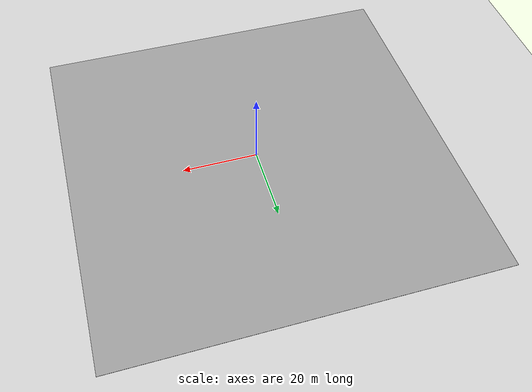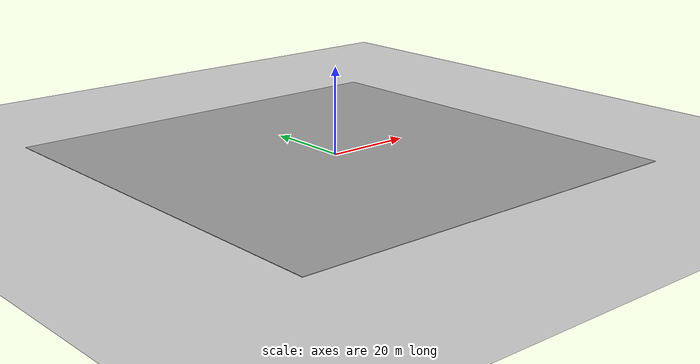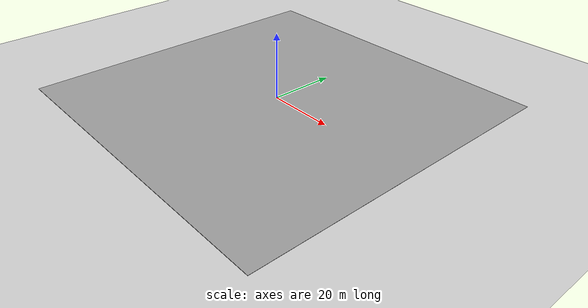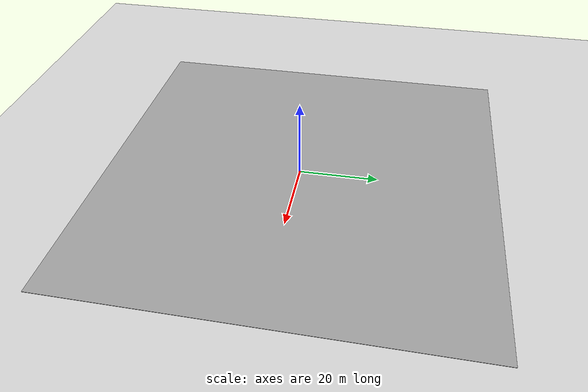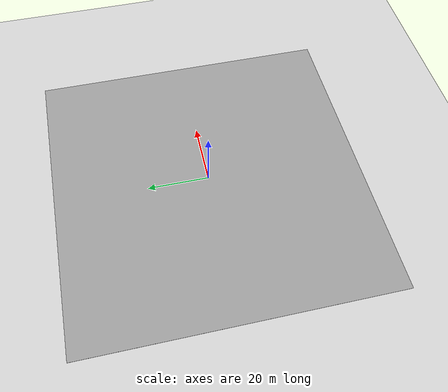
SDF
<sdf version="1.6">
 <world name="default">
  <light name="sun" type="directional">
   <pose>0 0 10 0 -0 0</pose>
   <diffuse>0.8 0.8 0.8 1</diffuse>
   <specular>0.1 0.1 0.1 1</specular>
   <attenuation>
    <range>1000</range>
    <constant>0.9</constant>
    <linear>0.01</linear>
    <quadratic>0.001</quadratic>
   </attenuation>
   <direction>-0.5 0.5 -1</direction>
  </light>
  <model name="ground_plane">
   <static>1</static>
   <link name="link">
    <collision name="collision">
     <geometry><plane><normal>0 0 1</normal><size>100 100</size></plane></geometry>
     <surface><friction><ode><mu>100</mu><mu2>50</mu2></ode></friction></surface>
    </collision>
    <visual name="visual">
     <cast_shadows>0</cast_shadows>
     <geometry><plane><normal>0 0 1</normal><size>100 100</size></plane></geometry>
     <material>
      <script><uri>file://media/materials/scripts/gazebo.material</uri><name>Gazebo/Grey</name></script>
     </material>
    </visual>
   </link>
  </model>
  <gravity>0 0 -9.8</gravity>
  <magnetic_field>6e-06 2.3e-05 -4.2e-05</magnetic_field>
  <atmosphere type="adiabatic"/>
  <physics name="default_physics" default="0" type="ode">
   <max_step_size>0.001</max_step_size>
   <real_time_factor>1</real_time_factor>
   <real_time_update_rate>1000</real_time_update_rate>
  </physics>
  <scene><ambient>0.4 0.4 0.4 1</ambient><background>0.7 0.7 0.7 1</background><shadows>1</shadows></scene>
  <audio><device>default</device></audio>
  <spherical_coordinates>
   <surface_model>EARTH_WGS84</surface_model>
   <latitude_deg>0</latitude_deg>
   <longitude_deg>0</longitude_deg>
   <elevation>0</elevation>
   <heading_deg>0</heading_deg>
  </spherical_coordinates>
  <model name="arm_TendonVisual">
   <link name="arm_holder">
    <pose>0 0.31 0.3 0 -0 0</pose>
    <inertial>
     <mass>2</mass>
     <inertia><ixx>1</ixx><ixy>0</ixy><ixz>0</ixz><iyy>1</iyy><iyz>0</iyz><izz>1</izz></inertia>
    </inertial>
    <visual name="visual">
     <geometry><box><size>0.1 0.1 0.5</size></box></geometry>
     <material><emissive>0 0 0 1</emissive></material>
    </visual>
    <collision name="collision">
     <geometry><box><size>0.05 0.05 0.6</size></box></geometry>
     <surface>
      <friction>
       <ode><mu>1</mu><mu2>1</mu2><fdir1>0 0 0</fdir1><slip1>0</slip1><slip2>0</slip2></ode>
       <torsional>
        <coefficient>1</coefficient>
        <patch_radius>0</patch_radius>
        <surface_radius>0</surface_radius>
        <use_patch_radius>1</use_patch_radius>
        <ode><slip>0</slip></ode>
       </torsional>
      </friction>
      <bounce><restitution_coefficient>0</restitution_coefficient><threshold>1e+06</threshold></bounce>
      <contact>
       <collide_without_contact>0</collide_without_contact>
       <collide_without_contact_bitmask>1</collide_without_contact_bitmask>
       <collide_bitmask>1</collide_bitmask>
       <ode>
        <soft_cfm>0</soft_cfm>
        <soft_erp>0.2</soft_erp>
        <kp>1e+13</kp>
        <kd>1</kd>
        <max_vel>0.01</max_vel>
        <min_depth>0</min_depth>
       </ode>
       <bullet>
        <split_impulse>1</split_impulse>
        <split_impulse_penetration_threshold>-0.01</split_impulse_penetration_threshold>
        <soft_cfm>0</soft_cfm>
        <soft_erp>0.2</soft_erp>
        <kp>1e+13</kp>
        <kd>1</kd>
       </bullet>
      </contact>
     </surface>
    </collision>
   </link>
   <link name="hand">
    <pose>0.14 0.197 0.335 0 -0 -1.5707</pose>
    <inertial>
     <mass>5</mass>
     <inertia><ixx>1</ixx><ixy>0</ixy><ixz>0</ixz><iyy>1</iyy><iyz>0</iyz><izz>1</izz></inertia>
    </inertial>
    <visual name="visual">
     <geometry><mesh><scale>1 1 1</scale><uri>model://arm/dae/p-handflaeche-teil-2-v01.dae</uri></mesh></geometry>
     <material>
      <shader type="pixel"><normal_map>__default__</normal_map></shader>
      <emissive>0 0 0 1</emissive>
     </material>
    </visual>
    <collision name="collision">
     <geometry>
      <mesh><uri>~/.gazebo/models/arm/dae/p-handflaeche-teil-2-v01.dae</uri><scale>1 1 1</scale></mesh>
     </geometry>
     <surface>
      <friction>
       <ode><mu>1</mu><mu2>1</mu2><fdir1>0 0 0</fdir1><slip1>0</slip1><slip2>0</slip2></ode>
       <torsional>
        <coefficient>1</coefficient>
        <patch_radius>0</patch_radius>
        <surface_radius>0</surface_radius>
        <use_patch_radius>1</use_patch_radius>
        <ode><slip>0</slip></ode>
       </torsional>
      </friction>
      <bounce><restitution_coefficient>0</restitution_coefficient><threshold>1e+06</threshold></bounce>
      <contact>
       <collide_without_contact>0</collide_without_contact>
       <collide_without_contact_bitmask>1</collide_without_contact_bitmask>
       <collide_bitmask>1</collide_bitmask>
       <ode>
        <soft_cfm>0</soft_cfm>
        <soft_erp>0.2</soft_erp>
        <kp>1e+13</kp>
        <kd>1</kd>
        <max_vel>0.01</max_vel>
        <min_depth>0</min_depth>
       </ode>
       <bullet>
        <split_impulse>1</split_impulse>
        <split_impulse_penetration_threshold>-0.01</split_impulse_penetration_threshold>
        <soft_cfm>0</soft_cfm>
        <soft_erp>0.2</soft_erp>
        <kp>1e+13</kp>
        <kd>1</kd>
       </bullet>
      </contact>
     </surface>
    </collision>
   </link>
   <link name="link_0">
    <pose>0.045136 0.210106 0.37375 -0.000363 0 0</pose>
    <inertial>
     <mass>0.0001</mass>
     <inertia><ixx>0.145833</ixx><ixy>0</ixy><ixz>0</ixz><iyy>0.145833</iyy><iyz>0</iyz><izz>0.125</izz></inertia>
    </inertial>
    <visual name="visual">
     <geometry><cylinder><radius>0.01</radius><length>0.01</length></cylinder></geometry>
     <material>
      <lighting>1</lighting>
      <script><uri>file://media/materials/scripts/gazebo.material</uri><name>Gazebo/Grey</name></script>
      <ambient>0.3 0.3 0.3 1</ambient>
      <diffuse>0.7 0.7 0.7 1</diffuse>
      <specular>0.01 0.01 0.01 1</specular>
      <emissive>0 0 0 1</emissive>
      <shader type="vertex"><normal_map>__default__</normal_map></shader>
     </material>
    </visual>
   </link>
   <link name="upper_arm">
    <pose>0 0.22 0.55 1.57 -0 1.5707</pose>
    <inertial>
     <mass>1</mass>
     <inertia><ixx>1</ixx><ixy>0</ixy><ixz>0</ixz><iyy>1</iyy><iyz>0</iyz><izz>1</izz></inertia>
    </inertial>
    <visual name="visual">
     <geometry><mesh><scale>1 1 1</scale><uri>model://arm/dae/p-oberarm-1-v02.dae</uri></mesh></geometry>
     <material><shader type="pixel"><normal_map>__default__</normal_map></shader></material>
    </visual>
    <collision name="collision">
     <geometry><mesh><uri>~/.gazebo/models/arm/dae/p-oberarm-1-v02.dae</uri><scale>1 1 1</scale></mesh></geometry>
     <surface>
      <friction>
       <ode><mu>1</mu><mu2>1</mu2><fdir1>0 0 0</fdir1><slip1>0</slip1><slip2>0</slip2></ode>
       <torsional>
        <coefficient>1</coefficient>
        <patch_radius>0</patch_radius>
        <surface_radius>0</surface_radius>
        <use_patch_radius>1</use_patch_radius>
        <ode><slip>0</slip></ode>
       </torsional>
      </friction>
      <bounce><restitution_coefficient>0</restitution_coefficient><threshold>1e+06</threshold></bounce>
      <contact>
       <collide_without_contact>0</collide_without_contact>
       <collide_without_contact_bitmask>1</collide_without_contact_bitmask>
       <collide_bitmask>1</collide_bitmask>
       <ode>
        <soft_cfm>0</soft_cfm>
        <soft_erp>0.2</soft_erp>
        <kp>1e+13</kp>
        <kd>1</kd>
        <max_vel>0.01</max_vel>
        <min_depth>0</min_depth>
       </ode>
       <bullet>
        <split_impulse>1</split_impulse>
        <split_impulse_penetration_threshold>-0.01</split_impulse_penetration_threshold>
        <soft_cfm>0</soft_cfm>
        <soft_erp>0.2</soft_erp>
        <kp>1e+13</kp>
        <kd>1</kd>
       </bullet>
      </contact>
     </surface>
    </collision>
   </link>
   <model name="ground_plane">
    <static>1</static>
    <link name="link">
     <collision name="collision">
      <geometry><plane><normal>0 0 1</normal><size>100 100</size></plane></geometry>
      <surface><friction><ode><mu>100</mu><mu2>50</mu2></ode></friction></surface>
     </collision>
     <visual name="visual">
      <cast_shadows>0</cast_shadows>
      <geometry><plane><normal>0 0 1</normal><size>100 100</size></plane></geometry>
      <material>
       <script><uri>file://media/materials/scripts/gazebo.material</uri><name>Gazebo/Grey</name></script>
      </material>
     </visual>
    </link>
    <pose>-0.056172 0.163749 -5.9e-05 0 -0 0</pose>
   </model>
   <joint name="arm_holder_upper_arm" type="fixed">
    <parent>arm_holder</parent>
    <child>upper_arm</child>
    <pose>0 -0.02 0 0 -0 0</pose>
    <physics>
     <ode><limit><cfm>0</cfm><erp>0.2</erp></limit><suspension><cfm>0</cfm><erp>0.2</erp></suspension></ode>
    </physics>
   </joint>
   <joint name="elbow" type="revolute">
    <parent>upper_arm</parent>
    <child>hand</child>
    <pose>0 -0.15 0 0 -0 1.57</pose>
    <axis>
     <xyz>0 1 0</xyz>
     <use_parent_model_frame>0</use_parent_model_frame>
     <limit><lower>-0.7</lower><upper>1.57</upper><effort>-1</effort><velocity>-1</velocity></limit>
     <dynamics>
      <spring_reference>0</spring_reference>
      <spring_stiffness>0</spring_stiffness>
      <damping>0</damping>
      <friction>0</friction>
     </dynamics>
    </axis>
    <physics>
     <ode><limit><cfm>0</cfm><erp>0.2</erp></limit><suspension><cfm>0</cfm><erp>0.2</erp></suspension></ode>
    </physics>
   </joint>
   <joint name="link_JOINT_0" type="fixed">
    <parent>ground_plane::link</parent>
    <child>arm_holder</child>
    <physics>
     <ode><limit><cfm>0</cfm><erp>0.2</erp></limit><suspension><cfm>0</cfm><erp>0.2</erp></suspension></ode>
    </physics>
   </joint>
   <joint name="hand_JOINT_1" type="fixed">
    <parent>hand</parent>
    <child>link_0</child>
    <physics>
     <ode><limit><cfm>0</cfm><erp>0.2</erp></limit><suspension><cfm>0</cfm><erp>0.2</erp></suspension></ode>
    </physics>
   </joint>
   <static>0</static>
   <plugin name="muscle_plugin" filename="libmuscle_plugin.so">
    <motor>
     <bemf_constant>0.001488</bemf_constant>
     <torque_constant>14.2</torque_constant>
     <inductance>0.118</inductance>
     <resistance>0.797</resistance>
     <inertiaMoment>4.09</inertiaMoment>
    </motor>
    <gear><ratio>53</ratio><efficiency>0.59</efficiency><inertiaMoment>0.4</inertiaMoment></gear>
    <spindle><radius>0.005</radius></spindle>
    <SEE><stiffness>1.0</stiffness><length0>0.1</length0></SEE>
   </plugin>
   <pose>-0.131497 -0.04101 0 0 -0 0</pose>
  </model>
 </world>
</sdf>
